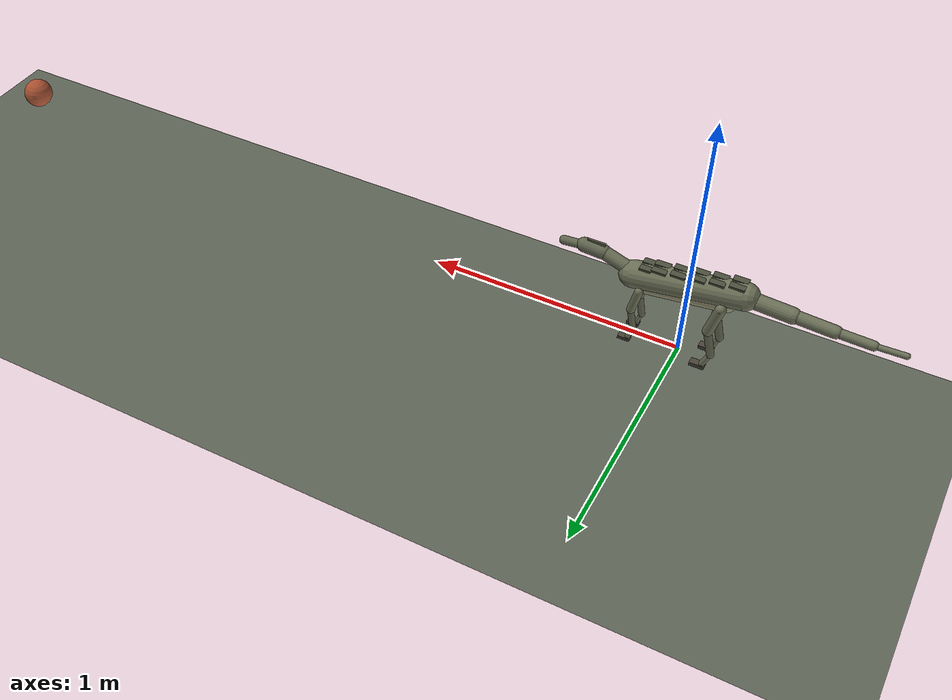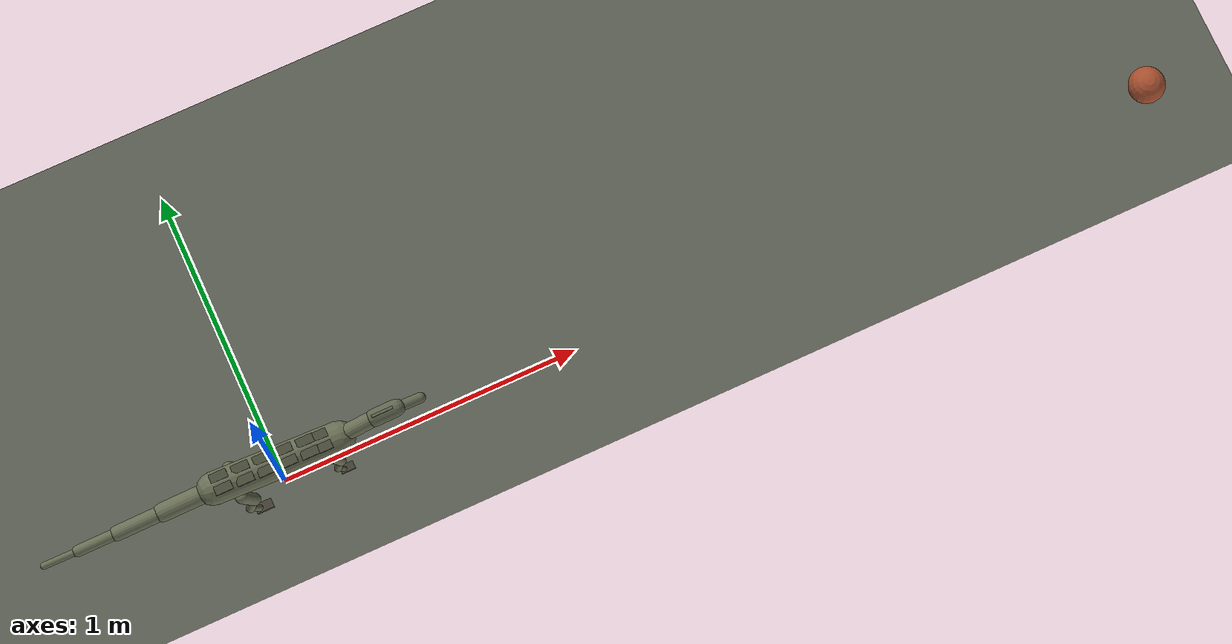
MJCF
<mujoco model="dibothrosuchus_elaphros">
  <compiler angle="degree" autolimits="true"/>

  <option timestep="0.002" gravity="0 0 -9.81" integrator="implicitfast">
    <flag warmstart="enable"/>
  </option>

  <default>
    <joint limited="true" damping="0.6" armature="0.004"/>
    <geom contype="1" conaffinity="1" friction="1.2 0.005 0.0001"/>
    <motor ctrllimited="true" ctrlrange="-1 1"/>

    <default class="leg_joint">
      <joint damping="1.2" armature="0.008" stiffness="3.0"/>
    </default>

    <!-- Neck joints: long slender sphenosuchian neck.  Low stiffness keeps it
         mobile for the snout-strike task while still resisting sag. -->
    <default class="neck_joint">
      <joint damping="0.5" armature="0.004" stiffness="1.5"/>
    </default>

    <default class="tail_joint">
      <joint damping="1.2" armature="0.005" stiffness="12.0" range="-15 15"/>
    </default>
  </default>

  <asset>
    <texture type="skybox" builtin="gradient" rgb1="0.6 0.8 1.0" rgb2="0.2 0.4 0.6"
             width="256" height="256"/>
    <texture name="grid" type="2d" builtin="checker" rgb1="0.42 0.44 0.38" rgb2="0.32 0.34 0.30"
             width="512" height="512"/>
    <material name="grid_mat" texture="grid" texrepeat="8 8" reflectance="0.1"/>
    <material name="body_mat" rgba="0.42 0.44 0.34 1"/>
    <material name="belly_mat" rgba="0.62 0.6 0.48 1"/>
    <material name="head_mat" rgba="0.38 0.4 0.31 1"/>
    <material name="scute_mat" rgba="0.3 0.31 0.24 1"/>
    <material name="foot_mat" rgba="0.28 0.26 0.22 1"/>
  </asset>

  <worldbody>
    <!-- Ground plane -->
    <geom name="floor" type="plane" size="50 50 0.1" material="grid_mat"
          conaffinity="1" contype="1"/>

    <body name="prey" mocap="true" pos="3 0 0.15">
      <geom name="prey_geom" type="sphere" size="0.06" rgba="0.8 0.35 0.2 0.8"
            contype="2" conaffinity="2"/>
    </body>

    <!-- ==================== DIBOTHROSUCHUS BODY ==================== -->

    <body name="torso" pos="0 0 0.3135">
      <freejoint name="root"/>

      <geom name="torso_main" type="capsule" fromto="-0.20 0 0.030  0.21 0 -0.038" size="0.052"
            mass="3.0" material="body_mat"/>

      <!-- Belly (mass carried low, and the geom whose floor contact marks a
           sprawl collapse). -->
      <geom name="belly" type="capsule" fromto="-0.14 0 -0.020  0.15 0 -0.060" size="0.040"
            mass="0.90" material="belly_mat"/>

      <!-- IMU sensor site -->
      <site name="imu" pos="0 0 0" size="0.015"/>

      <geom name="scute_r_1" type="box" pos="-0.17 -0.020 0.076" size="0.028 0.014 0.004"
            mass="0.025" material="scute_mat" contype="0" conaffinity="0"/>
      <geom name="scute_l_1" type="box" pos="-0.17 0.020 0.076" size="0.028 0.014 0.004"
            mass="0.025" material="scute_mat" contype="0" conaffinity="0"/>
      <geom name="scute_r_2" type="box" pos="-0.10 -0.020 0.064" size="0.028 0.014 0.004"
            mass="0.025" material="scute_mat" contype="0" conaffinity="0"/>
      <geom name="scute_l_2" type="box" pos="-0.10 0.020 0.064" size="0.028 0.014 0.004"
            mass="0.025" material="scute_mat" contype="0" conaffinity="0"/>
      <geom name="scute_r_3" type="box" pos="-0.03 -0.020 0.053" size="0.028 0.014 0.004"
            mass="0.025" material="scute_mat" contype="0" conaffinity="0"/>
      <geom name="scute_l_3" type="box" pos="-0.03 0.020 0.053" size="0.028 0.014 0.004"
            mass="0.025" material="scute_mat" contype="0" conaffinity="0"/>
      <geom name="scute_r_4" type="box" pos="0.04 -0.020 0.041" size="0.028 0.014 0.004"
            mass="0.025" material="scute_mat" contype="0" conaffinity="0"/>
      <geom name="scute_l_4" type="box" pos="0.04 0.020 0.041" size="0.028 0.014 0.004"
            mass="0.025" material="scute_mat" contype="0" conaffinity="0"/>
      <geom name="scute_r_5" type="box" pos="0.11 -0.020 0.030" size="0.028 0.014 0.004"
            mass="0.025" material="scute_mat" contype="0" conaffinity="0"/>
      <geom name="scute_l_5" type="box" pos="0.11 0.020 0.030" size="0.028 0.014 0.004"
            mass="0.025" material="scute_mat" contype="0" conaffinity="0"/>
      <geom name="scute_r_6" type="box" pos="0.16 -0.020 0.021" size="0.022 0.014 0.004"
            mass="0.025" material="scute_mat" contype="0" conaffinity="0"/>
      <geom name="scute_l_6" type="box" pos="0.16 0.020 0.021" size="0.022 0.014 0.004"
            mass="0.025" material="scute_mat" contype="0" conaffinity="0"/>

      <!-- ==================== NECK + SKULL ==================== -->
      <!-- Long, slender, mobile neck carrying a narrow crested skull. -->

      <body name="neck" pos="0.20 0 -0.030">
        <joint name="neck_pitch" class="neck_joint" type="hinge" axis="0 1 0" range="-35 40"/>
        <joint name="neck_yaw" class="neck_joint" type="hinge" axis="0 0 1" range="-35 35"/>
        <geom name="neck_geom" type="capsule" fromto="0 0 0  0.13 0 0.045" size="0.026"
              mass="0.35" material="body_mat" contype="0" conaffinity="0"/>

        <body name="skull" pos="0.13 0 0.045">
          <joint name="head_pitch" class="neck_joint" type="hinge" axis="0 1 0" range="-30 35"/>
          <geom name="skull_geom" type="capsule" fromto="0 0 0  0.075 0 0.004" size="0.028"
                mass="0.30" material="head_mat"/>
          <!-- Sagittal crest: a diagnostic Dibothrosuchus feature, and the
               anchor for the jaw musculature.  Visual-only. -->
          <geom name="sagittal_crest" type="box" pos="0.03 0 0.028" size="0.035 0.004 0.010"
                mass="0.03" material="head_mat" contype="0" conaffinity="0"/>
          <!-- Narrow elongate snout with the small conical dentition. -->
          <geom name="snout_geom" type="capsule" fromto="0.07 0 0.002  0.155 0 -0.006" size="0.017"
                mass="0.16" material="head_mat"/>

          <!-- Snout tip site for proximity-based snap detection -->
          <site name="snout_tip" pos="0.16 0 -0.006" size="0.008"/>

          <!-- Snap contact geom at the snout tip.  contype/conaffinity 2 puts
               it on the prey's collision channel and off the floor's, so it
               only ever registers prey contact. -->
          <geom name="snout_snap" type="box" pos="0.150 0 -0.006" size="0.022 0.014 0.012"
                mass="0.02" rgba="0 0 0 0" contype="2" conaffinity="2"/>
        </body>
      </body>

      <!-- ==================== TAIL ==================== -->
      <!-- 4 segments, ~0.56m, held clear of the ground in the high walk.
           Segment 4 is passive: only the proximal three carry actuators. -->

      <body name="tail_1" pos="-0.20 0 0.026">
        <joint name="tail_1_pitch" class="tail_joint" type="hinge" axis="0 1 0"/>
        <joint name="tail_1_yaw" class="tail_joint" type="hinge" axis="0 0 1" range="-12 12"/>
        <geom name="tail_1_geom" type="capsule" fromto="0 0 0  -0.17 0 -0.010" size="0.030"
              mass="0.55" material="body_mat"/>

        <body name="tail_2" pos="-0.17 0 -0.010">
          <joint name="tail_2_pitch" class="tail_joint" type="hinge" axis="0 1 0"/>
          <geom name="tail_2_geom" type="capsule" fromto="0 0 0  -0.15 0 -0.008" size="0.024"
                mass="0.38" material="body_mat"/>

          <body name="tail_3" pos="-0.15 0 -0.008">
            <joint name="tail_3_pitch" class="tail_joint" type="hinge" axis="0 1 0"/>
            <geom name="tail_3_geom" type="capsule" fromto="0 0 0  -0.13 0 -0.004" size="0.018"
                  mass="0.22" material="body_mat"/>

            <body name="tail_4" pos="-0.13 0 -0.004">
              <joint name="tail_4_pitch" class="tail_joint" type="hinge" axis="0 1 0"/>
              <geom name="tail_4_geom" type="capsule" fromto="0 0 0  -0.11 0 0.004" size="0.011"
                    mass="0.12" material="body_mat"/>
              <site name="tail_tip" pos="-0.11 0 0.004" size="0.008"/>
            </body>
          </body>
        </body>
      </body>

      <!-- ==================== FRONT RIGHT LEG ==================== -->
      <!-- Glenoid 72mm below the trunk frame, on the sloping pectoral girdle.
           Humerus / radius-ulna / metacarpus / manus pad, authored vertical:
           every joint is 0 in the home pose. -->

      <body name="fr_thigh" pos="0.165 -0.045 -0.072">
        <joint name="fr_hip_pitch" class="leg_joint" type="hinge" axis="0 1 0" range="-45 45"/>
        <joint name="fr_hip_roll" class="leg_joint" type="hinge" axis="1 0 0" range="-18 18"/>
        <geom name="fr_thigh_geom" type="capsule" fromto="0 0 0  0.020 0 -0.095" size="0.016"
              mass="0.22" material="body_mat"/>

        <body name="fr_shin" pos="0.020 0 -0.095">
          <joint name="fr_knee" class="leg_joint" type="hinge" axis="0 1 0" range="-65 20"/>
          <geom name="fr_shin_geom" type="capsule" fromto="0 0 0  -0.018 0 -0.087" size="0.0125"
                mass="0.13" material="body_mat"/>

          <body name="fr_meta" pos="-0.018 0 -0.087">
            <joint name="fr_ankle" class="leg_joint" type="hinge" axis="0 1 0" range="-30 50"/>
            <geom name="fr_meta_geom" type="capsule" fromto="0 0 0  0.016 0 -0.048" size="0.009"
                  mass="0.06" material="body_mat"/>

            <body name="fr_foot" pos="0.016 0 -0.048">
              <joint name="fr_toe" class="leg_joint" type="hinge" axis="0 1 0" range="-20 40"/>
              <!-- Flat manus pad: one load-bearing fore-aft surface rather
                   than a point contact on the metacarpus endpoint. -->
              <geom name="fr_foot_geom" type="box" pos="0.011 0 -0.006" size="0.023 0.013 0.006"
                    mass="0.05" material="foot_mat"/>
              <site name="fr_foot_contact" type="box" pos="0.011 0 -0.006" size="0.042 0.024 0.012"
                    group="4"/>
            </body>
          </body>
        </body>
      </body>

      <!-- ==================== FRONT LEFT LEG ==================== -->

      <body name="fl_thigh" pos="0.165 0.045 -0.072">
        <joint name="fl_hip_pitch" class="leg_joint" type="hinge" axis="0 1 0" range="-45 45"/>
        <joint name="fl_hip_roll" class="leg_joint" type="hinge" axis="1 0 0" range="-18 18"/>
        <geom name="fl_thigh_geom" type="capsule" fromto="0 0 0  0.020 0 -0.095" size="0.016"
              mass="0.22" material="body_mat"/>

        <body name="fl_shin" pos="0.020 0 -0.095">
          <joint name="fl_knee" class="leg_joint" type="hinge" axis="0 1 0" range="-65 20"/>
          <geom name="fl_shin_geom" type="capsule" fromto="0 0 0  -0.018 0 -0.087" size="0.0125"
                mass="0.13" material="body_mat"/>

          <body name="fl_meta" pos="-0.018 0 -0.087">
            <joint name="fl_ankle" class="leg_joint" type="hinge" axis="0 1 0" range="-30 50"/>
            <geom name="fl_meta_geom" type="capsule" fromto="0 0 0  0.016 0 -0.048" size="0.009"
                  mass="0.06" material="body_mat"/>

            <body name="fl_foot" pos="0.016 0 -0.048">
              <joint name="fl_toe" class="leg_joint" type="hinge" axis="0 1 0" range="-20 40"/>
              <geom name="fl_foot_geom" type="box" pos="0.011 0 -0.006" size="0.023 0.013 0.006"
                    mass="0.05" material="foot_mat"/>
              <site name="fl_foot_contact" type="box" pos="0.011 0 -0.006" size="0.042 0.024 0.012"
                    group="4"/>
            </body>
          </body>
        </body>
      </body>

      <!-- ==================== REAR RIGHT LEG ==================== -->

      <body name="rr_thigh" pos="-0.135 -0.050 -0.022">
        <joint name="rr_hip_pitch" class="leg_joint" type="hinge" axis="0 1 0" range="-50 50"/>
        <joint name="rr_hip_roll" class="leg_joint" type="hinge" axis="1 0 0" range="-20 20"/>
        <geom name="rr_thigh_geom" type="capsule" fromto="0 0 0  0.030 0 -0.115" size="0.020"
              mass="0.34" material="body_mat"/>

        <body name="rr_shin" pos="0.030 0 -0.115">
          <joint name="rr_knee" class="leg_joint" type="hinge" axis="0 1 0" range="-70 25"/>
          <geom name="rr_shin_geom" type="capsule" fromto="0 0 0  -0.026 0 -0.105" size="0.015"
                mass="0.20" material="body_mat"/>

          <body name="rr_meta" pos="-0.026 0 -0.105">
            <joint name="rr_ankle" class="leg_joint" type="hinge" axis="0 1 0" range="-35 55"/>
            <geom name="rr_meta_geom" type="capsule" fromto="0 0 0  0.024 0 -0.058" size="0.011"
                  mass="0.09" material="body_mat"/>

            <body name="rr_foot" pos="0.024 0 -0.058">
              <joint name="rr_toe" class="leg_joint" type="hinge" axis="0 1 0" range="-25 45"/>
              <geom name="rr_foot_geom" type="box" pos="0.015 0 -0.007" size="0.028 0.015 0.007"
                    mass="0.07" material="foot_mat"/>
              <site name="rr_foot_contact" type="box" pos="0.015 0 -0.007" size="0.050 0.026 0.014"
                    group="4"/>
            </body>
          </body>
        </body>
      </body>

      <!-- ==================== REAR LEFT LEG ==================== -->

      <body name="rl_thigh" pos="-0.135 0.050 -0.022">
        <joint name="rl_hip_pitch" class="leg_joint" type="hinge" axis="0 1 0" range="-50 50"/>
        <joint name="rl_hip_roll" class="leg_joint" type="hinge" axis="1 0 0" range="-20 20"/>
        <geom name="rl_thigh_geom" type="capsule" fromto="0 0 0  0.030 0 -0.115" size="0.020"
              mass="0.34" material="body_mat"/>

        <body name="rl_shin" pos="0.030 0 -0.115">
          <joint name="rl_knee" class="leg_joint" type="hinge" axis="0 1 0" range="-70 25"/>
          <geom name="rl_shin_geom" type="capsule" fromto="0 0 0  -0.026 0 -0.105" size="0.015"
                mass="0.20" material="body_mat"/>

          <body name="rl_meta" pos="-0.026 0 -0.105">
            <joint name="rl_ankle" class="leg_joint" type="hinge" axis="0 1 0" range="-35 55"/>
            <geom name="rl_meta_geom" type="capsule" fromto="0 0 0  0.024 0 -0.058" size="0.011"
                  mass="0.09" material="body_mat"/>

            <body name="rl_foot" pos="0.024 0 -0.058">
              <joint name="rl_toe" class="leg_joint" type="hinge" axis="0 1 0" range="-25 45"/>
              <geom name="rl_foot_geom" type="box" pos="0.015 0 -0.007" size="0.028 0.015 0.007"
                    mass="0.07" material="foot_mat"/>
              <site name="rl_foot_contact" type="box" pos="0.015 0 -0.007" size="0.050 0.026 0.014"
                    group="4"/>
            </body>
          </body>
        </body>
      </body>

    </body> <!-- end torso -->
  </worldbody>

  <!-- ==================== ACTUATORS ==================== -->

  <actuator>

    <!-- Neck and skull -->
    <position name="neck_pitch_act" joint="neck_pitch" kp="25" forcerange="-17.5 17.5" ctrlrange="-0.6109 0.6981"/>
    <position name="neck_yaw_act" joint="neck_yaw" kp="20" forcerange="-14 14" ctrlrange="-0.6109 0.6109"/>
    <position name="head_pitch_act" joint="head_pitch" kp="12" forcerange="-8.4 8.4" ctrlrange="-0.5236 0.6109"/>

    <!-- Front right leg -->
    <position name="fr_hip_pitch_act" joint="fr_hip_pitch" kp="70" forcerange="-105 105" ctrlrange="-0.7854 0.7854"/>
    <position name="fr_hip_roll_act" joint="fr_hip_roll" kp="32" forcerange="-22.4 22.4" ctrlrange="-0.3142 0.3142"/>
    <position name="fr_knee_act" joint="fr_knee" kp="85" forcerange="-127.5 127.5" ctrlrange="-1.1345 0.3491"/>
    <position name="fr_ankle_act" joint="fr_ankle" kp="45" forcerange="-67.5 67.5" ctrlrange="-0.5236 0.8727"/>
    <position name="fr_toe_act" joint="fr_toe" kp="18" forcerange="-12.6 12.6" ctrlrange="-0.3491 0.6981"/>

    <!-- Front left leg -->
    <position name="fl_hip_pitch_act" joint="fl_hip_pitch" kp="70" forcerange="-105 105" ctrlrange="-0.7854 0.7854"/>
    <position name="fl_hip_roll_act" joint="fl_hip_roll" kp="32" forcerange="-22.4 22.4" ctrlrange="-0.3142 0.3142"/>
    <position name="fl_knee_act" joint="fl_knee" kp="85" forcerange="-127.5 127.5" ctrlrange="-1.1345 0.3491"/>
    <position name="fl_ankle_act" joint="fl_ankle" kp="45" forcerange="-67.5 67.5" ctrlrange="-0.5236 0.8727"/>
    <position name="fl_toe_act" joint="fl_toe" kp="18" forcerange="-12.6 12.6" ctrlrange="-0.3491 0.6981"/>

    <!-- Rear right leg -->
    <position name="rr_hip_pitch_act" joint="rr_hip_pitch" kp="90" forcerange="-135 135" ctrlrange="-0.8727 0.8727"/>
    <position name="rr_hip_roll_act" joint="rr_hip_roll" kp="40" forcerange="-28 28" ctrlrange="-0.3491 0.3491"/>
    <position name="rr_knee_act" joint="rr_knee" kp="110" forcerange="-165 165" ctrlrange="-1.2217 0.4363"/>
    <position name="rr_ankle_act" joint="rr_ankle" kp="60" forcerange="-90 90" ctrlrange="-0.6109 0.9599"/>
    <position name="rr_toe_act" joint="rr_toe" kp="22" forcerange="-15.4 15.4" ctrlrange="-0.4363 0.7854"/>

    <!-- Rear left leg -->
    <position name="rl_hip_pitch_act" joint="rl_hip_pitch" kp="90" forcerange="-135 135" ctrlrange="-0.8727 0.8727"/>
    <position name="rl_hip_roll_act" joint="rl_hip_roll" kp="40" forcerange="-28 28" ctrlrange="-0.3491 0.3491"/>
    <position name="rl_knee_act" joint="rl_knee" kp="110" forcerange="-165 165" ctrlrange="-1.2217 0.4363"/>
    <position name="rl_ankle_act" joint="rl_ankle" kp="60" forcerange="-90 90" ctrlrange="-0.6109 0.9599"/>
    <position name="rl_toe_act" joint="rl_toe" kp="22" forcerange="-15.4 15.4" ctrlrange="-0.4363 0.7854"/>

    <!-- Tail actuators.  Proximal three segments only; tail_4 stays passive. -->
    <position name="tail_1_pitch_act" joint="tail_1_pitch" kp="18" forcerange="-12.6 12.6" ctrlrange="-0.2094 0.2094"/>
    <position name="tail_1_yaw_act" joint="tail_1_yaw" kp="14" forcerange="-9.8 9.8" ctrlrange="-0.1745 0.1745"/>
    <position name="tail_2_pitch_act" joint="tail_2_pitch" kp="12" forcerange="-8.4 8.4" ctrlrange="-0.2094 0.2094"/>
    <position name="tail_3_pitch_act" joint="tail_3_pitch" kp="8" forcerange="-5.6 5.6" ctrlrange="-0.2094 0.2094"/>
  </actuator>

  <!-- ==================== SENSORS ==================== -->

  <sensor>
    <!-- IMU-like sensors on the trunk -->
    <gyro name="torso_gyro" site="imu"/>
    <accelerometer name="torso_accel" site="imu"/>
    <framequat name="torso_orientation" objtype="site" objname="imu"/>

    <!-- Foot contact forces (4 feet) -->
    <touch name="fr_foot_touch" site="fr_foot_contact"/>
    <touch name="fl_foot_touch" site="fl_foot_contact"/>
    <touch name="rr_foot_touch" site="rr_foot_contact"/>
    <touch name="rl_foot_touch" site="rl_foot_contact"/>

    <!-- Snout tip position (for the snap task) -->
    <framepos name="snout_tip_pos" objtype="site" objname="snout_tip"/>

    <!-- Tail tip for stability monitoring -->
    <framepos name="tail_tip_pos" objtype="site" objname="tail_tip"/>
    <velocimeter name="tail_tip_linvel" site="tail_tip"/>
    <gyro name="tail_tip_angvel" site="tail_tip"/>
  </sensor>

  <!-- ==================== CONTACT EXCLUSIONS ==================== -->

  <contact>
    <!-- Neck/skull chain -->
    <exclude body1="torso" body2="neck"/>
    <exclude body1="neck" body2="skull"/>

    <!-- Tail chain -->
    <exclude body1="torso" body2="tail_1"/>
    <exclude body1="tail_1" body2="tail_2"/>
    <exclude body1="tail_2" body2="tail_3"/>
    <exclude body1="tail_3" body2="tail_4"/>

    <!-- Girdle-limb -->
    <exclude body1="torso" body2="fr_thigh"/>
    <exclude body1="torso" body2="fl_thigh"/>
    <exclude body1="torso" body2="rr_thigh"/>
    <exclude body1="torso" body2="rl_thigh"/>

    <!-- Shin/metapodium/pad chains -->
    <exclude body1="fr_shin" body2="fr_meta"/>
    <exclude body1="fl_shin" body2="fl_meta"/>
    <exclude body1="rr_shin" body2="rr_meta"/>
    <exclude body1="rl_shin" body2="rl_meta"/>
    <exclude body1="fr_meta" body2="fr_foot"/>
    <exclude body1="fl_meta" body2="fl_foot"/>
    <exclude body1="rr_meta" body2="rr_foot"/>
    <exclude body1="rl_meta" body2="rl_foot"/>
  </contact>

  <!-- ==================== KEYFRAMES ==================== -->

  <keyframe>
    <key name="home"
         qpos="0 0 0.3135 1 0 0 0
               0 0 0
               0 0 0 0 0
               0 0 0 0 0
               0 0 0 0 0
               0 0 0 0 0
               0 0 0 0 0"
         ctrl="0 0 0
               0 0 0 0 0
               0 0 0 0 0
               0 0 0 0 0
               0 0 0 0 0
               0 0 0 0"/>
  </keyframe>

</mujoco>
